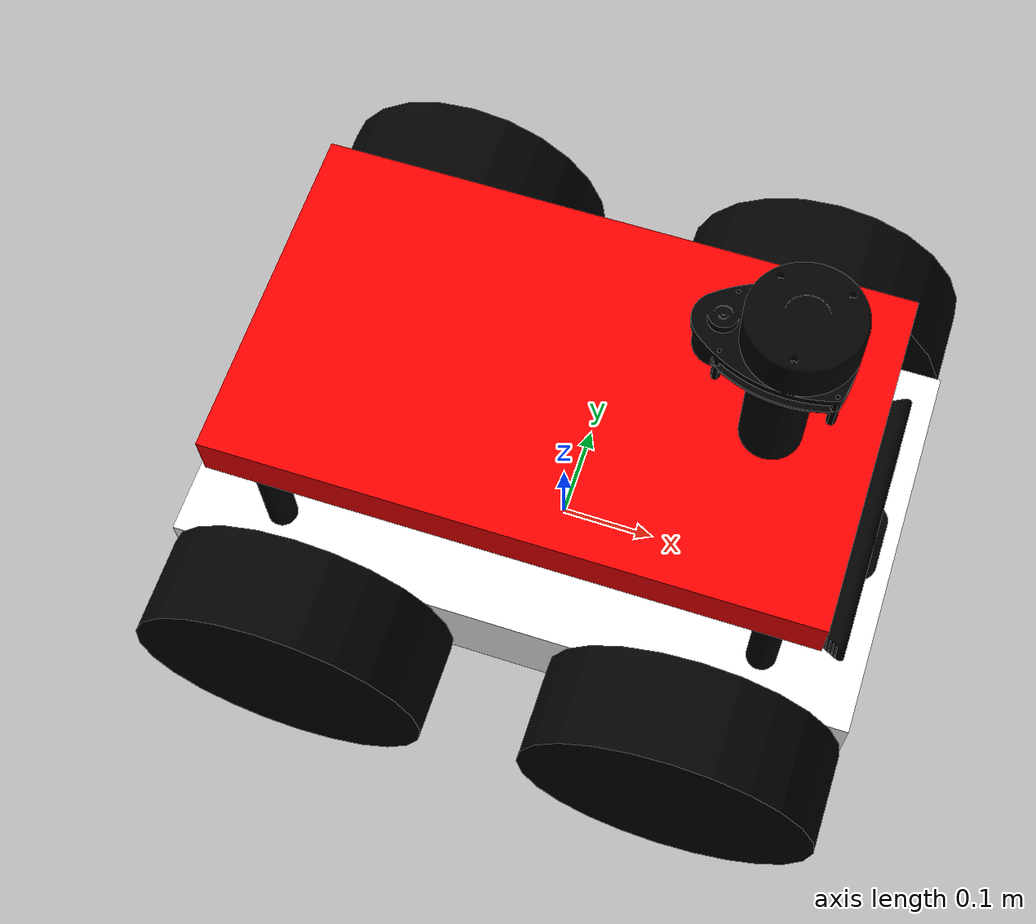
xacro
<?xml version="1.0"?>
<robot xmlns:xacro="http://www.ros.org/wiki/xacro" name="rabe_bot">
     <xacro:include filename="$(find robot_simulation_description)/urdf/rabe_bot_basic.gazebo"/>

          <link name="dummy_link">

          </link>
          <link name="base_link">
                    <inertial>
                              <origin xyz="0.0 0.0 0.0" rpy="0.0 0.0 0.0"/>
                              <mass value="0.5"/>
                              <inertia ixx="0.4" ixy="0.0" ixz="0.0" iyy="0.4" iyz="0.0" izz="0.2"/>
                    </inertial>
                    <visual name="">
                              <origin xyz="0.0 0.0 0.0" rpy="0.0 0.0 0.0"/>
                              <geometry>
                                        <box size="0.7 0.4 0.1"/>
                              </geometry>
                              <material name="">
                                        <color rgba="1.0 1.0 1.0 1.0"/>
                                        <texture filename=""/>
                              </material>
                    </visual>
                    <collision>
                              <origin xyz="0.0 0.0 0.0" rpy="0.0 0.0 0.0"/>
                              <geometry>
                                        <box size="0.7 0.4 0.2"/>
                              </geometry>
                    </collision>
          </link>
          <joint name="base_joint" type="fixed">
                    <origin xyz="0.0 0.0 0.1" rpy="0.0 0.0 0.0"/>
                    <parent link="dummy_link"/>
                    <child link="base_link"/>
                    <axis xyz="0.0 0.0 1.0"/>
                    <limit lower="0.0" upper="0.0" effort="0.0" velocity="0.0"/>
          </joint>

<!--Right Front Cylinder Stand-->

<!-- when using xacro-
do not forget to be sure that the xacro is also installed in your ROS
otherwise, you can install it by using:
 $ sudo apt-get install ros-neotic-xacro in the terminal -->

          <xacro:macro name="stand" params="name x y z mass radius length">
                    <link name="${name}_link">
                                  <inertial>
                                        <origin xyz="0.0 0.0 0.0" rpy="0.0 0.0 0.0"/>
                                        <mass value="${mass}"/>
                                        <inertia ixx="${0.5 * mass * radius * radius}"
                                                  ixy="0.0"
                                                  ixz="0.0"
                                                  iyy="${0.5 * mass * radius * radius}"
                                                  iyz="0.0"
                                                  izz="${0.25 * mass * radius * radius + (1/12) * mass * length * length}" />
                                   </inertial>
                              <visual name="">
                                        <origin xyz="0.0 0.0 0.0" rpy="0.0 0.0 0.0"/>
                                        <geometry>
                                                  <cylinder radius="${radius}" length="${length}"/>
                                        </geometry>
                                        <material name="">
                                                  <color rgba="0.0 0.0 0.0 1.0"/>
                                                  <texture filename=""/>
                                        </material>1
                              </visual>
                              <collision>
                                        <origin xyz="0.0 0.0 0.0" rpy="0.0 0.0 0.0"/>
                                        <geometry>
                                                  <cylinder radius="${radius}" length="${length}"/>
                                        </geometry>
                              </collision>
                    </link>
                    <joint name="${name}_joint" type="fixed">
                              <origin xyz="${x} ${y} ${z}" rpy="0.0 0.0 0.0"/>
                              <parent link="base_link"/>
                              <child link="${name}_link"/>
                              <axis xyz="0.0 0.0 0.0"/>
                              <limit lower="0.0" upper="0.0" effort="0.0" velocity="0.0"/>
                    </joint>
          </xacro:macro>

          <xacro:stand name="front_right_stand" x="-0.25" y="-0.15" z="0.1" mass="0.05" radius="0.015" length="0.2"/>
          <xacro:stand name="front_left_stand" x="-0.25" y="0.15" z="0.1" mass="0.05" radius="0.015" length="0.2"/>
          <xacro:stand name="rear_right_stand" x="0.25" y="-0.15" z="0.1" mass="0.05" radius="0.015" length="0.2"/>
          <xacro:stand name="rear_left_stand" x="0.25" y="0.15" z="0.1" mass="0.05" radius="0.015" length="0.2"/>

          <xacro:stand name="under_lidar_stand" x="0.2" y="-0.0" z="0.30" mass="0.05" radius="0.03" length="0.15"/>

          <!-- Layer Two Top -->

          <link name="top_layer_link">
                    <inertial>
                              <origin xyz="0.0 0.0 0.0" rpy="0.0 0.0 0.0"/>
                              <mass value="0.2"/>
                              <inertia ixx="0.4" ixy="0.0" ixz="0.0" iyy="0.4" iyz="0.0" izz="0.2"/>
                    </inertial>
                    <visual name="">
                              <origin xyz="0.0 0.0 0.0" rpy="0.0 0.0 0.0"/>
                              <geometry>
                                        <box size="0.6 0.35 0.05"/>
                              </geometry>
                              <material name="">
                                        <color rgba="1.0 0.0 0.0 1.0"/>
                                        <texture filename=""/>
                              </material>
                    </visual>
                    <collision>
                              <origin xyz="0.0 0.0 0.0" rpy="0.0 0.0 0.0"/>
                              <geometry>
                                        <box size="0.6 0.35 0.05"/>
                              </geometry>
                    </collision>
          </link>

          <joint name="top_layer_joint" type="fixed">
                    <origin xyz="0.0 0.0 0.2" rpy="0.0 0.0 0.0"/>
                    <parent link="base_link"/>
                    <child link="top_layer_link"/>
                    <axis xyz="0.0 0.0 0.0"/>
                    <limit lower="0.0" upper="0.0" effort="0.0" velocity="0.0"/>
          </joint>

          <!-- right front wheel -->
          <xacro:macro name="wheel_right" params="name x y">
               <link name="${name}_link">
                              <inertial>
                                        <origin xyz="0.0 0.0 0.0" rpy="0.0 0.0 0.0"/>
                                        <mass value="0.5"/>
                                        <inertia ixx="0.4" ixy="0.0" ixz="0.0" iyy="0.4" iyz="0.0" izz="0.2"/>
                              </inertial>
                              <visual name="">
                                        <origin xyz="0.0 0.0 0.0" rpy="0.0 0.0 0.0"/>
                                        <geometry>
                                             <cylinder radius="0.15" length="0.1"/>
                                        </geometry>
                                        <material name="black">
                                                  <color rgba="0.0 0.0 0.0 1.0"/>
                                                  <texture filename=""/>
                                        </material>
                              </visual>
                              <collision>
                                        <origin xyz="0.0 0.0 0.0" rpy="0.0 0.0 0.0"/>
                                        <geometry>
                                             <cylinder radius="0.15" length="0.1"/>
                                        </geometry>
                              </collision>
                    </link>
                    <joint name="${name}_joint" type="continuous">
                              <origin xyz="${x} ${y} 0.0" rpy="0.0 1.5705 1.5705 "/>
                              <parent link="base_link"/>
                              <child link="${name}_link"/>
                              <axis xyz="0.0 0.0 1.0"/>

                    </joint>

          </xacro:macro>

          <xacro:macro name="wheel_left" params="name x y">
               <link name="${name}_link">
                              <inertial>
                                        <origin xyz="0.0 0.0 0.0" rpy="0.0 0.0 0.0"/>
                                        <mass value="0.5"/>
                                        <inertia ixx="0.4" ixy="0.0" ixz="0.0" iyy="0.4" iyz="0.0" izz="0.2"/>
                              </inertial>
                              <visual name="">
                                        <origin xyz="0.0 0.0 0.0" rpy="0.0 0.0 0.0"/>
                                        <geometry>
                                             <cylinder radius="0.15" length="0.1"/>
                                        </geometry>
                                        <material name="black">
                                             <color rgba="0.0 0.0 0.0 1.0"/>
                                             <texture filename=""/>
                                        </material>
                              </visual>
                              <collision>
                                        <origin xyz="0.0 0.0 0.0" rpy="0.0 0.0 0.0"/>
                                        <geometry>
                                             <cylinder radius="0.15" length="0.1"/>
                                        </geometry>
                              </collision>
                    </link>
                    <joint name="${name}_joint" type="continuous">
                              <origin xyz="${x} ${y} 0.0" rpy="0.0 1.5705 1.5705 "/>
                              <parent link="base_link"/>
                              <child link="${name}_link"/>
                              <axis xyz="0.0 0.0 1.0"/>

                    </joint>

          </xacro:macro>

<xacro:wheel_right name="front_right_wheel" x="0.2" y="-0.26"/>
<xacro:wheel_left name="front_left_wheel" x="0.2" y="0.26"/>
<xacro:wheel_right name="rear_right_wheel" x="-0.2" y="-0.26"/>
<xacro:wheel_left name="rear_left_wheel" x="-0.2" y="0.26"/>

          <!---Kinect/Depth Camera  POINTCLOUD-->

          <link name="camera_link">
               <inertial>
                    <origin xyz="0.0 0.0 0.0" rpy="0.0 0.0 0.0"/>
                    <mass value="0.1"/>
                    <inertia ixx="0.0" ixy="0.0" ixz="0.0" iyy="0.0" iyz="0.0" izz="0.0"/>
               </inertial>
               <visual name="">
                    <origin xyz="0.0 0.0 0.0" rpy="0.0 0.0 0.0"/>
                    <geometry>
                         <mesh filename="package://robot_simulation_description/meshes/Kinect.dae" scale="0.0010 0.0010 0.0010"/>
                    </geometry>
                    <material name="">
                         <color rgba="0.0 0.0 0.0 1.0"/>
                         <texture filename=""/>
                    </material>
               </visual>
               <collision>
                    <origin xyz="0.0 0.0 0.0" rpy="0.0 0.0 0.0"/>
                    <geometry>
                         <mesh filename="package://robot_simulation_description/meshes/Kinect.dae" scale="0.0010 0.0010 0.0010"/>
                    </geometry>
               </collision>
          </link>

          <joint name="camera_joint" type="fixed">
               <origin xyz="0.30 0.0 0.06" rpy="0.0 0.0 1.5705"/>
               <parent link="base_link"/>
               <child link="camera_link"/>
               <axis xyz="0.0 0.0 0.0"/>
          </joint>

          <!-- For Optical data correction if needed .. -->
          <link name="camera_optical_data_correction_link">

          </link>

          <joint name="camera_optical_data_correction_joint" type="fixed">
               <origin xyz="0.0 0.0 0.0" rpy="0.0 0.0 -1.5705"/>
               <parent link="camera_link"/>
               <child link="camera_optical_data_correction_link"/>
               <axis xyz="0.0 0.0 0.0"/>

          </joint>

         <!---LiDAR Camera-->

          <link name="lidar_link">
               <inertial>
                    <origin xyz="0.0 0.0 0.0" rpy="0.0 0.0 0.0"/>
                    <mass value="0.1"/>
                    <inertia ixx="0.0" ixy="0.0" ixz="0.0" iyy="0.0" iyz="0.0" izz="0.0"/>
               </inertial>
               <visual name="lidar_visual">
                    <origin xyz="0.0 0.0 0.0" rpy="0.0 0.0 0.0"/>
                    <geometry>
                         <mesh filename="package://robot_simulation_description/meshes/LiDAR.dae" scale="0.0015 0.0015 0.0015"/>
                    </geometry>
                    <material name="black">
                         <color rgba="0.0 0.0 0.0 1.0"/>
                         <texture filename=""/>
                    </material>
               </visual>
               <collision>
                    <origin xyz="0.0 0.0 0.0" rpy="0.0 0.0 0.0"/>
                    <geometry>
                         <mesh filename="package://robot_simulation_description/meshes/LiDAR.dae" scale="0.0015 0.0015 0.0015"/>
                    </geometry>
               </collision>
          </link>

          <joint name="lidar_joint" type="fixed">
               <origin xyz="0.26 -0.05 0.15" rpy="1.5705 0 3.14"/>
               <parent link="top_layer_link"/>
               <child link="lidar_link"/>
               <axis xyz="0.0 0.0 0.0"/>

          </joint>

          <!-- For LiDAR data correction if needed .. -->
          <link name="lidar_optical_data_correction_link">

          </link>

          <joint name="lidar_optical_data_correction_joint" type="fixed">
               <origin xyz="0.0 0.0 0.0" rpy="1.5705 0.0 0.0"/>
               <parent link="lidar_link"/>
               <child link="lidar_optical_data_correction_link"/>
               <axis xyz="0.0 0.0 0.0"/>

          </joint>

</robot>
